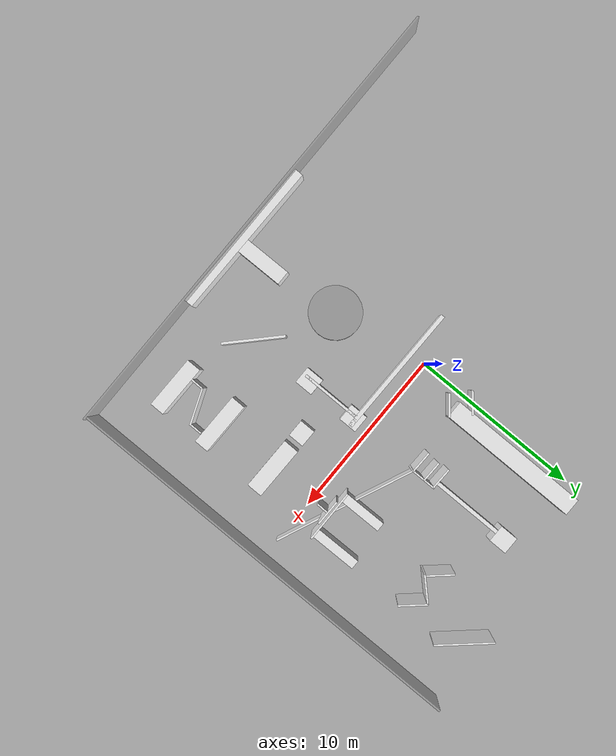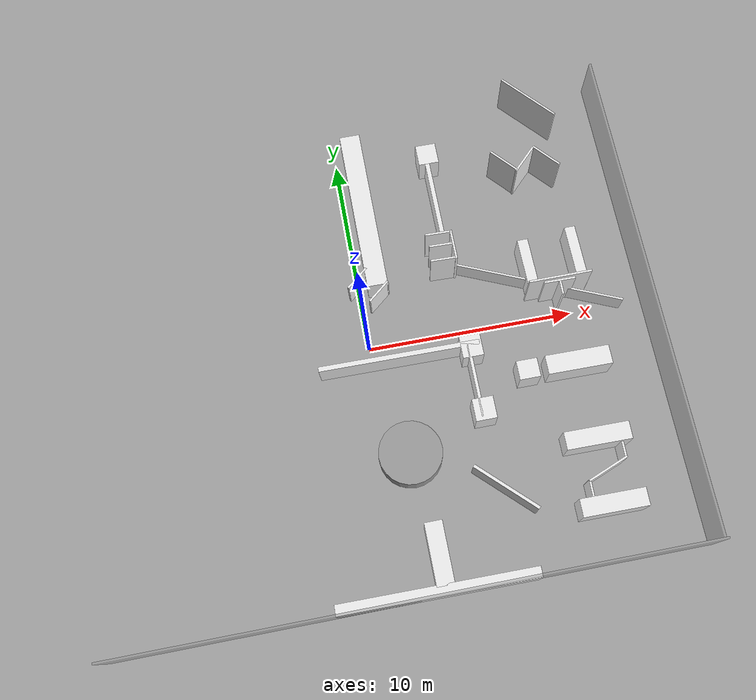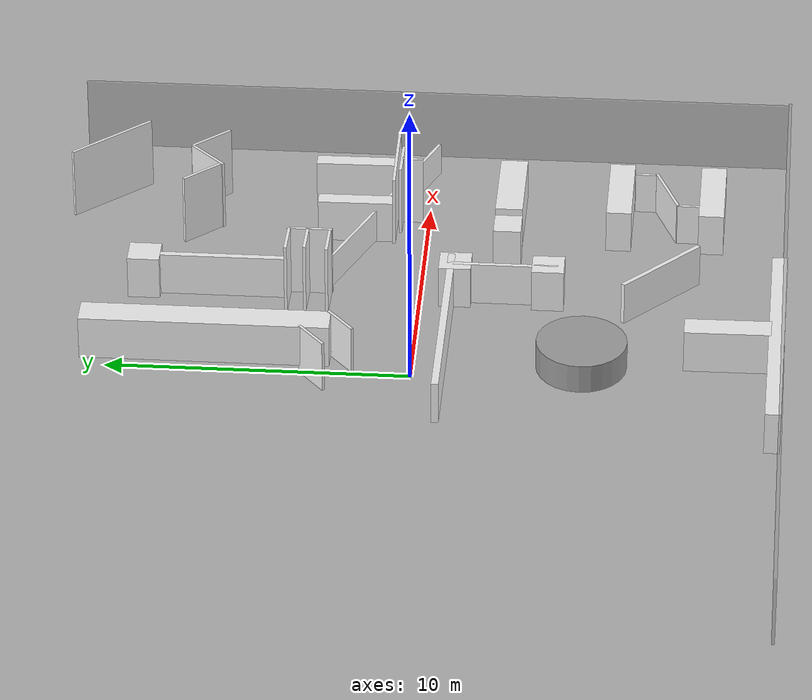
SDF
<sdf version="1.6">
 <world name="default">
  <model name="box_1">
   <pose>0.05 -12.05 1.25 0 -0 0</pose>
   <static>1</static>
   <link name="link">
    <collision name="collision"><geometry><box><size>27.4835 0.1 2.5</size></box></geometry></collision>
    <visual name="visual">
     <geometry><box><size>27.4835 0.1 2.5</size></box></geometry>
     <material>
      <script><name>Gazebo/GreyTransparent</name><uri>file://media/materials/scripts/gazebo.material</uri></script>
     </material>
    </visual>
   </link>
  </model>
  <model name="box_2">
   <pose>13.6164 0.05 1.25 0 -0 0</pose>
   <static>1</static>
   <link name="link">
    <collision name="collision"><geometry><box><size>0.1 24.1 2.5</size></box></geometry></collision>
    <visual name="visual">
     <geometry><box><size>0.1 24.1 2.5</size></box></geometry>
     <material>
      <script><name>Gazebo/GreyTransparent</name><uri>file://media/materials/scripts/gazebo.material</uri></script>
     </material>
    </visual>
   </link>
  </model>
  <model name="box_9_clone_clone_9_clone_3">
   <pose>0.923625 6.78613 0.75 0 -0 0</pose>
   <static>1</static>
   <link name="link">
    <collision name="collision"><geometry><box><size>1 8.21069 1.5</size></box></geometry></collision>
    <visual name="visual">
     <geometry><box><size>1 8.21069 1.5</size></box></geometry>
     <material>
      <script><name>Gazebo/White</name><uri>file://media/materials/scripts/gazebo.material</uri></script>
     </material>
    </visual>
   </link>
  </model>
  <model name="box_8_clone_clone_4_clone_1">
   <pose>0.92481 2.34897 0.68407 0 -0 0.698352</pose>
   <static>1</static>
   <link name="link">
    <collision name="collision"><geometry><box><size>1.32603 0.1 1.67648</size></box></geometry></collision>
    <visual name="visual">
     <geometry><box><size>1.32603 0.1 1.67648</size></box></geometry>
     <material>
      <script><name>Gazebo/White</name><uri>file://media/materials/scripts/gazebo.material</uri></script>
     </material>
    </visual>
   </link>
  </model>
  <model name="box_6_clone_clone_4_clone">
   <pose>4.19641 4.36405 1.25 0 -0 1.5473</pose>
   <static>1</static>
   <link name="link">
    <collision name="collision"><geometry><box><size>0.1 1.24868 2.5</size></box></geometry></collision>
    <visual name="visual">
     <geometry><box><size>0.1 1.24868 2.5</size></box></geometry>
     <material>
      <script><name>Gazebo/White</name><uri>file://media/materials/scripts/gazebo.material</uri></script>
     </material>
    </visual>
   </link>
  </model>
  <model name="box_9_clone_clone_5_clone_2_clone_0_clone_2">
   <pose>4.51157 6.4869 0.75 0 -0 0</pose>
   <static>1</static>
   <link name="link">
    <collision name="collision"><geometry><box><size>0.217022 4.27843 1.5</size></box></geometry></collision>
    <visual name="visual">
     <geometry><box><size>0.217022 4.27843 1.5</size></box></geometry>
     <material>
      <script><name>Gazebo/White</name><uri>file://media/materials/scripts/gazebo.material</uri></script>
     </material>
    </visual>
   </link>
  </model>
  <model name="box_6_clone_clone_4_clone_clone">
   <pose>4.24691 3.74326 1.25 0 -0 1.5473</pose>
   <static>1</static>
   <link name="link">
    <collision name="collision"><geometry><box><size>0.1 1.20271 2.5</size></box></geometry></collision>
    <visual name="visual">
     <geometry><box><size>0.1 1.20271 2.5</size></box></geometry>
     <material>
      <script><name>Gazebo/White</name><uri>file://media/materials/scripts/gazebo.material</uri></script>
     </material>
    </visual>
   </link>
  </model>
  <model name="box_6_clone_clone_4_clone_clone_0">
   <pose>4.18218 3.00755 1.25 0 -0 1.5473</pose>
   <static>1</static>
   <link name="link">
    <collision name="collision"><geometry><box><size>0.1 1.22541 2.5</size></box></geometry></collision>
    <visual name="visual">
     <geometry><box><size>0.1 1.22541 2.5</size></box></geometry>
     <material>
      <script><name>Gazebo/White</name><uri>file://media/materials/scripts/gazebo.material</uri></script>
     </material>
    </visual>
   </link>
  </model>
  <model name="box_8_clone_clone_4_clone_1_clone">
   <pose>0.020285 3.21878 0.598648 0 -0 0.698352</pose>
   <static>1</static>
   <link name="link">
    <collision name="collision"><geometry><box><size>1.32602 0.1 1.81655</size></box></geometry></collision>
    <visual name="visual">
     <geometry><box><size>1.32602 0.1 1.81655</size></box></geometry>
     <material>
      <script><name>Gazebo/White</name><uri>file://media/materials/scripts/gazebo.material</uri></script>
     </material>
    </visual>
   </link>
  </model>
  <model name="box_9_clone_clone_5_clone_2_clone_0_clone_2_clone_0_clone">
   <pose>1.29918 -0.998345 0.75 0 -0 1.56359</pose>
   <static>1</static>
   <link name="link">
    <collision name="collision"><geometry><box><size>0.238975 7.6866 1.5</size></box></geometry></collision>
    <visual name="visual">
     <geometry><box><size>0.238975 7.6866 1.5</size></box></geometry>
     <material>
      <script><name>Gazebo/White</name><uri>file://media/materials/scripts/gazebo.material</uri></script>
     </material>
    </visual>
   </link>
  </model>
  <model name="unit_cylinder">
   <pose>0.98539 -5.52496 0.500019 -9e-06 -9e-06 -0.000698</pose>
   <link name="link">
    <inertial>
     <mass>1</mass>
     <inertia><ixx>0.145833</ixx><ixy>0</ixy><ixz>0</ixz><iyy>0.145833</iyy><iyz>0</iyz><izz>0.125</izz></inertia>
    </inertial>
    <collision name="collision">
     <geometry><cylinder><radius>1.49142</radius><length>1</length></cylinder></geometry>
    </collision>
    <visual name="visual">
     <geometry><cylinder><radius>1.49142</radius><length>1</length></cylinder></geometry>
     <material>
      <script><name>Gazebo/Grey</name><uri>file://media/materials/scripts/gazebo.material</uri></script>
     </material>
    </visual>
   </link>
  </model>
  <model name="box_6_clone_clone_4_clone_clone_1">
   <pose>4.8146 3.66742 1.25 0 0 -0.001309</pose>
   <static>1</static>
   <link name="link">
    <collision name="collision"><geometry><box><size>0.1 1.5 2.5</size></box></geometry></collision>
    <visual name="visual">
     <geometry><box><size>0.1 1.5 2.5</size></box></geometry>
     <material>
      <script><name>Gazebo/White</name><uri>file://media/materials/scripts/gazebo.material</uri></script>
     </material>
    </visual>
   </link>
  </model>
  <model name="box_9_clone_clone_5_clone_2_clone_0_clone_2_clone_0_clone_clone_clone">
   <pose>9.54444 -6.45224 0.75 0 -0 1.56352</pose>
   <static>1</static>
   <link name="link">
    <collision name="collision"><geometry><box><size>0.843798 3.07714 1.5</size></box></geometry></collision>
    <visual name="visual">
     <geometry><box><size>0.843798 3.07714 1.5</size></box></geometry>
     <material>
      <script><name>Gazebo/White</name><uri>file://media/materials/scripts/gazebo.material</uri></script>
     </material>
    </visual>
   </link>
  </model>
  <model name="box_9_clone_clone_5_clone_2_clone_0_clone_2_clone_0_clone_clone_clone_clone">
   <pose>9.54266 -2.76485 0.75 0 -0 1.56352</pose>
   <static>1</static>
   <link name="link">
    <collision name="collision"><geometry><box><size>0.91874 3.07802 1.5</size></box></geometry></collision>
    <visual name="visual">
     <geometry><box><size>0.91874 3.07802 1.5</size></box></geometry>
     <material>
      <script><name>Gazebo/White</name><uri>file://media/materials/scripts/gazebo.material</uri></script>
     </material>
    </visual>
   </link>
  </model>
  <model name="box_6_clone_clone_1_clone">
   <pose>9.63242 -8.01755 0.74041 0 0 -1.19602</pose>
   <static>1</static>
   <link name="link">
    <collision name="collision"><geometry><box><size>0.1 2.10156 1.49114</size></box></geometry></collision>
    <visual name="visual">
     <geometry><box><size>0.1 2.10156 1.49114</size></box></geometry>
     <material>
      <script><name>Gazebo/White</name><uri>file://media/materials/scripts/gazebo.material</uri></script>
     </material>
    </visual>
   </link>
  </model>
  <model name="box_6_clone_clone_4_clone_clone_clone">
   <pose>9.37461 0.934459 1.25 0 -0 1.56028</pose>
   <static>1</static>
   <link name="link">
    <collision name="collision"><geometry><box><size>0.1 1.5 2.5</size></box></geometry></collision>
    <visual name="visual">
     <geometry><box><size>0.1 1.5 2.5</size></box></geometry>
     <material>
      <script><name>Gazebo/White</name><uri>file://media/materials/scripts/gazebo.material</uri></script>
     </material>
    </visual>
   </link>
  </model>
  <model name="box_6_clone_clone_4_clone_clone_clone_0">
   <pose>9.4532 1.11788 1.25 0 -0 1.57422</pose>
   <static>1</static>
   <link name="link">
    <collision name="collision"><geometry><box><size>0.1 3.02222 2.5</size></box></geometry></collision>
    <visual name="visual">
     <geometry><box><size>0.1 3.02222 2.5</size></box></geometry>
     <material>
      <script><name>Gazebo/White</name><uri>file://media/materials/scripts/gazebo.material</uri></script>
     </material>
    </visual>
   </link>
  </model>
  <model name="box_6_clone_clone_4_clone_clone_clone_clone">
   <pose>9.36555 0.57412 1.25 0 -0 3.12409</pose>
   <static>1</static>
   <link name="link">
    <collision name="collision"><geometry><box><size>0.1 0.695313 2.5</size></box></geometry></collision>
    <visual name="visual">
     <geometry><box><size>0.1 0.695313 2.5</size></box></geometry>
     <material>
      <script><name>Gazebo/White</name><uri>file://media/materials/scripts/gazebo.material</uri></script>
     </material>
    </visual>
   </link>
  </model>
  <model name="box_9_clone_clone_5_clone_2_clone_0_clone_2_clone_0_clone_clone_clone_clone_1">
   <pose>8.29292 2.40961 0.75 0 0 -3.13353</pose>
   <static>1</static>
   <link name="link">
    <collision name="collision"><geometry><box><size>0.517731 2.54125 1.5</size></box></geometry></collision>
    <visual name="visual">
     <geometry><box><size>0.517731 2.54125 1.5</size></box></geometry>
     <material>
      <script><name>Gazebo/White</name><uri>file://media/materials/scripts/gazebo.material</uri></script>
     </material>
    </visual>
   </link>
  </model>
  <model name="box_9_clone_clone_5_clone_2_clone_0_clone_2_clone_0_clone_clone_clone_clone_1_clone">
   <pose>10.7143 2.50136 0.75 0 0 -3.13353</pose>
   <static>1</static>
   <link name="link">
    <collision name="collision"><geometry><box><size>0.517731 2.83434 1.5</size></box></geometry></collision>
    <visual name="visual">
     <geometry><box><size>0.517731 2.83434 1.5</size></box></geometry>
     <material>
      <script><name>Gazebo/White</name><uri>file://media/materials/scripts/gazebo.material</uri></script>
     </material>
    </visual>
   </link>
  </model>
  <model name="box_6_clone_clone_clone_0_clone_0_clone_clone_clone">
   <pose>9.16663 7.48045 1.25 0 -0 2.3647</pose>
   <static>1</static>
   <link name="link">
    <collision name="collision"><geometry><box><size>0.1 1.60265 2.5</size></box></geometry></collision>
    <visual name="visual">
     <geometry><box><size>0.1 1.60265 2.5</size></box></geometry>
     <material>
      <script><name>Gazebo/White</name><uri>file://media/materials/scripts/gazebo.material</uri></script>
     </material>
    </visual>
   </link>
  </model>
  <model name="box_6_clone_clone_clone_0_clone_0_clone_2">
   <pose>8.12867 7.55946 1.25 0 0 -2.41059</pose>
   <static>1</static>
   <link name="link">
    <collision name="collision"><geometry><box><size>0.1 1.60265 2.5</size></box></geometry></collision>
    <visual name="visual">
     <geometry><box><size>0.1 1.60265 2.5</size></box></geometry>
     <material>
      <script><name>Gazebo/White</name><uri>file://media/materials/scripts/gazebo.material</uri></script>
     </material>
    </visual>
   </link>
  </model>
  <model name="box_6_clone_clone_clone_0_clone_0_clone_0_clone">
   <pose>10.2349 7.47203 1.25 0 0 -2.41059</pose>
   <static>1</static>
   <link name="link">
    <collision name="collision"><geometry><box><size>0.1 1.60265 2.5</size></box></geometry></collision>
    <visual name="visual">
     <geometry><box><size>0.1 1.60265 2.5</size></box></geometry>
     <material>
      <script><name>Gazebo/White</name><uri>file://media/materials/scripts/gazebo.material</uri></script>
     </material>
    </visual>
   </link>
  </model>
  <model name="box_6_clone_clone_1_clone_0">
   <pose>8.61855 1.50825 0.618044 0 -0 1.16323</pose>
   <static>1</static>
   <link name="link">
    <collision name="collision"><geometry><box><size>0.1 8.30654 1.15985</size></box></geometry></collision>
    <visual name="visual">
     <geometry><box><size>0.1 8.30654 1.15985</size></box></geometry>
     <material>
      <script><name>Gazebo/White</name><uri>file://media/materials/scripts/gazebo.material</uri></script>
     </material>
    </visual>
   </link>
  </model>
  <model name="box_9_clone_clone_5_clone_2_clone_0_clone_2_clone_0_clone_clone">
   <pose>1.05576 -11.8471 0.75 0 -0 1.56352</pose>
   <static>1</static>
   <link name="link">
    <collision name="collision"><geometry><box><size>0.517731 9.1748 1.5</size></box></geometry></collision>
    <visual name="visual">
     <geometry><box><size>0.517731 9.1748 1.5</size></box></geometry>
     <material>
      <script><name>Gazebo/White</name><uri>file://media/materials/scripts/gazebo.material</uri></script>
     </material>
    </visual>
   </link>
  </model>
  <model name="box_9_clone_clone_5_clone_2_clone_0_clone_2_clone_0_clone_clone_clone_clone_1_clone_clone">
   <pose>1.38751 -10.2593 0.75 0 0 -3.13353</pose>
   <static>1</static>
   <link name="link">
    <collision name="collision"><geometry><box><size>0.825522 2.83434 1.5</size></box></geometry></collision>
    <visual name="visual">
     <geometry><box><size>0.825522 2.83434 1.5</size></box></geometry>
     <material>
      <script><name>Gazebo/White</name><uri>file://media/materials/scripts/gazebo.material</uri></script>
     </material>
    </visual>
   </link>
  </model>
  <model name="box_9_clone_clone_5_clone_clone">
   <pose>4.5992 9.15741 0.75 0 -0 0</pose>
   <static>1</static>
   <link name="link">
    <collision name="collision"><geometry><box><size>1 1.06509 1.5</size></box></geometry></collision>
    <visual name="visual">
     <geometry><box><size>1 1.06509 1.5</size></box></geometry>
     <material>
      <script><name>Gazebo/White</name><uri>file://media/materials/scripts/gazebo.material</uri></script>
     </material>
    </visual>
   </link>
  </model>
  <model name="box_6_clone_clone_clone_0_clone_0_clone_2_clone_0">
   <pose>10.0891 10.8411 1.25 0 0 -2.41059</pose>
   <static>1</static>
   <link name="link">
    <collision name="collision"><geometry><box><size>0.1 3.24242 2.5</size></box></geometry></collision>
    <visual name="visual">
     <geometry><box><size>0.1 3.24242 2.5</size></box></geometry>
     <material>
      <script><name>Gazebo/White</name><uri>file://media/materials/scripts/gazebo.material</uri></script>
     </material>
    </visual>
   </link>
  </model>
  <model name="box_9_clone_clone_5_clone_2_clone_0_clone_2_clone_0_clone_clone_clone_clone_0">
   <pose>9.53139 -9.54857 0.75 0 -0 1.56352</pose>
   <static>1</static>
   <link name="link">
    <collision name="collision"><geometry><box><size>0.843798 3.07714 1.5</size></box></geometry></collision>
    <visual name="visual">
     <geometry><box><size>0.843798 3.07714 1.5</size></box></geometry>
     <material>
      <script><name>Gazebo/White</name><uri>file://media/materials/scripts/gazebo.material</uri></script>
     </material>
    </visual>
   </link>
  </model>
  <model name="box_9_clone_clone_5_clone_2_clone_0_clone_2_clone_0_clone_clone_0_clone">
   <pose>4.9281 -7.96233 0.75 0 0 -2.33603</pose>
   <static>1</static>
   <link name="link">
    <collision name="collision"><geometry><box><size>0.149813 3.48664 1.5</size></box></geometry></collision>
    <visual name="visual">
     <geometry><box><size>0.149813 3.48664 1.5</size></box></geometry>
     <material>
      <script><name>Gazebo/White</name><uri>file://media/materials/scripts/gazebo.material</uri></script>
     </material>
    </visual>
   </link>
  </model>
  <model name="box_9_clone_clone_5_clone_2_clone_0_clone_2_clone_0_clone_clone_0_clone_clone">
   <pose>4.59014 -2.84305 0.75 0 -0 3.14009</pose>
   <static>1</static>
   <link name="link">
    <collision name="collision"><geometry><box><size>0.149813 3.48664 1.5</size></box></geometry></collision>
    <visual name="visual">
     <geometry><box><size>0.149813 3.48664 1.5</size></box></geometry>
     <material>
      <script><name>Gazebo/White</name><uri>file://media/materials/scripts/gazebo.material</uri></script>
     </material>
    </visual>
   </link>
  </model>
  <model name="box_9_clone_clone_5_clone_clone_clone_0">
   <pose>4.7058 -4.24546 0.75 0 -0 0</pose>
   <static>1</static>
   <link name="link">
    <collision name="collision"><geometry><box><size>1 1.06509 1.5</size></box></geometry></collision>
    <visual name="visual">
     <geometry><box><size>1 1.06509 1.5</size></box></geometry>
     <material>
      <script><name>Gazebo/White</name><uri>file://media/materials/scripts/gazebo.material</uri></script>
     </material>
    </visual>
   </link>
  </model>
  <model name="box_9_clone_clone_5_clone_clone_clone_2">
   <pose>7.1184 -2.76878 0.75 0 -0 0</pose>
   <static>1</static>
   <link name="link">
    <collision name="collision"><geometry><box><size>1 0.921639 1.5</size></box></geometry></collision>
    <visual name="visual">
     <geometry><box><size>1 0.921639 1.5</size></box></geometry>
     <material>
      <script><name>Gazebo/White</name><uri>file://media/materials/scripts/gazebo.material</uri></script>
     </material>
    </visual>
   </link>
  </model>
  <model name="box_6_clone_clone_4_clone_clone_clone_clone_clone_0">
   <pose>10.5612 -7.26456 0.728231 0 -0 3.12409</pose>
   <static>1</static>
   <link name="link">
    <collision name="collision"><geometry><box><size>0.1 0.695313 1.468</size></box></geometry></collision>
    <visual name="visual">
     <geometry><box><size>0.1 0.695313 1.468</size></box></geometry>
     <material>
      <script><name>Gazebo/White</name><uri>file://media/materials/scripts/gazebo.material</uri></script>
     </material>
    </visual>
   </link>
  </model>
  <model name="box_6_clone_clone_4_clone_clone_clone_clone_clone_0_clone">
   <pose>8.67421 -8.77015 0.728231 0 -0 3.12409</pose>
   <static>1</static>
   <link name="link">
    <collision name="collision"><geometry><box><size>0.1 0.772875 1.468</size></box></geometry></collision>
    <visual name="visual">
     <geometry><box><size>0.1 0.772875 1.468</size></box></geometry>
     <material>
      <script><name>Gazebo/White</name><uri>file://media/materials/scripts/gazebo.material</uri></script>
     </material>
    </visual>
   </link>
  </model>
  <model name="box_9_clone_clone_5_clone_clone_clone_1_clone">
   <pose>4.72909 -1.1665 0.75 0 -0 0</pose>
   <static>1</static>
   <link name="link">
    <collision name="collision"><geometry><box><size>1 1.06509 1.5</size></box></geometry></collision>
    <visual name="visual">
     <geometry><box><size>1 1.06509 1.5</size></box></geometry>
     <material>
      <script><name>Gazebo/White</name><uri>file://media/materials/scripts/gazebo.material</uri></script>
     </material>
    </visual>
   </link>
  </model>
 </world>
</sdf>
